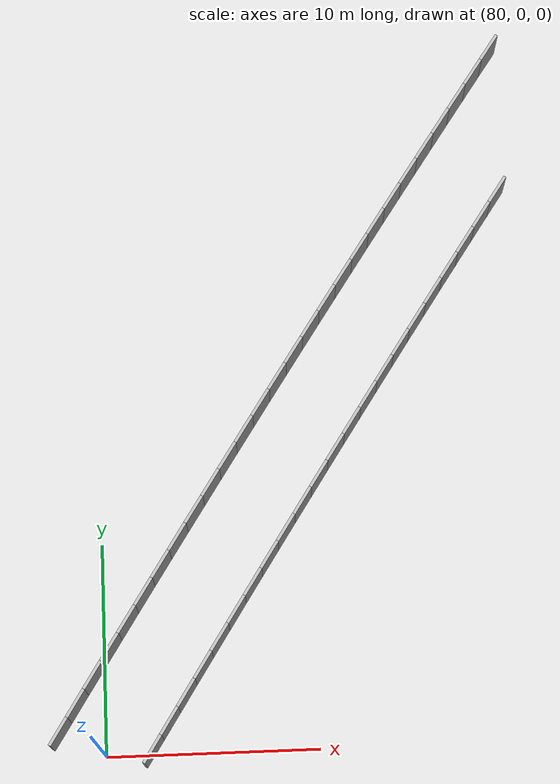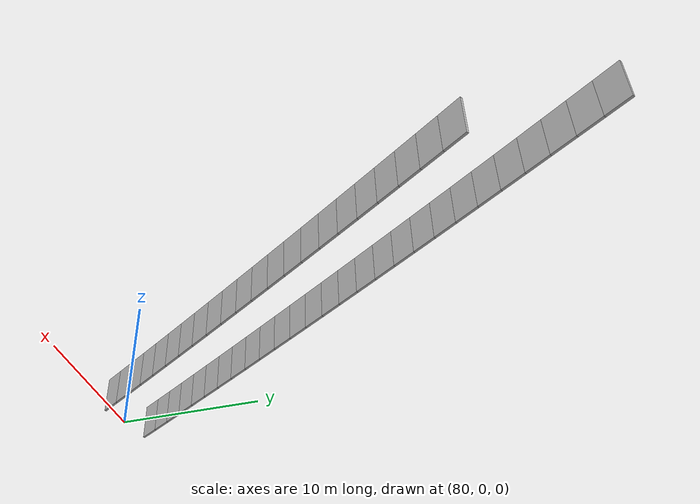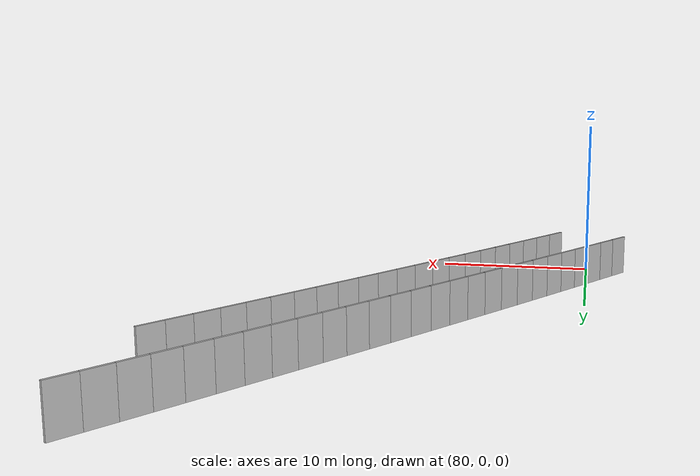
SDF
<?xml version="1.0" ?>
<sdf version="1.6">
  <model name="sps_0218">
    <pose frame="">0 0 0 0 -0 0</pose>
    <static>1</static>
    <self_collide>0</self_collide>
    <allow_auto_disable>0</allow_auto_disable>
    <link name="Wall4869">
      <kinematic>0</kinematic>
      <gravity>1</gravity>
      <self_collide>0</self_collide>
      <collision name="collision">
        <geometry>
          <box>
            <size>1.49647 0.15 2.5</size>
          </box>
        </geometry>
        <pose frame="">0 0 0 0 -0 0</pose>
      </collision>
      <visual name="visual">
        <geometry>
          <box>
            <size>1.49647 0.15 2.5</size>
          </box>
        </geometry>
        <pose frame="">0 0 0 0 -0 0</pose>
        <cast_shadows>1</cast_shadows>
        <transparency>0.0</transparency>
      </visual>
      <pose frame="">99.5547 26.3019 1.25 0 0 -2.17114</pose>
    </link>
    <link name="Wall4870">
      <kinematic>0</kinematic>
      <gravity>1</gravity>
      <self_collide>0</self_collide>
      <collision name="collision">
        <geometry>
          <box>
            <size>1.49665 0.15 2.5</size>
          </box>
        </geometry>
        <pose frame="">0 0 0 0 -0 0</pose>
      </collision>
      <visual name="visual">
        <geometry>
          <box>
            <size>1.49665 0.15 2.5</size>
          </box>
        </geometry>
        <pose frame="">0 0 0 0 -0 0</pose>
        <cast_shadows>1</cast_shadows>
        <transparency>0.0</transparency>
      </visual>
      <pose frame="">98.7103 25.0663 1.25 0 0 -2.16943</pose>
    </link>
    <link name="Wall4871">
      <kinematic>0</kinematic>
      <gravity>1</gravity>
      <self_collide>0</self_collide>
      <collision name="collision">
        <geometry>
          <box>
            <size>1.49636 0.15 2.5</size>
          </box>
        </geometry>
        <pose frame="">0 0 0 0 -0 0</pose>
      </collision>
      <visual name="visual">
        <geometry>
          <box>
            <size>1.49636 0.15 2.5</size>
          </box>
        </geometry>
        <pose frame="">0 0 0 0 -0 0</pose>
        <cast_shadows>1</cast_shadows>
        <transparency>0.0</transparency>
      </visual>
      <pose frame="">97.8679 23.8294 1.25 0 0 -2.16799</pose>
    </link>
    <link name="Wall4872">
      <kinematic>0</kinematic>
      <gravity>1</gravity>
      <self_collide>0</self_collide>
      <collision name="collision">
        <geometry>
          <box>
            <size>1.49655 0.15 2.5</size>
          </box>
        </geometry>
        <pose frame="">0 0 0 0 -0 0</pose>
      </collision>
      <visual name="visual">
        <geometry>
          <box>
            <size>1.49655 0.15 2.5</size>
          </box>
        </geometry>
        <pose frame="">0 0 0 0 -0 0</pose>
        <cast_shadows>1</cast_shadows>
        <transparency>0.0</transparency>
      </visual>
      <pose frame="">97.0275 22.5912 1.25 0 0 -2.16622</pose>
    </link>
    <link name="Wall4873">
      <kinematic>0</kinematic>
      <gravity>1</gravity>
      <self_collide>0</self_collide>
      <collision name="collision">
        <geometry>
          <box>
            <size>1.49652 0.15 2.5</size>
          </box>
        </geometry>
        <pose frame="">0 0 0 0 -0 0</pose>
      </collision>
      <visual name="visual">
        <geometry>
          <box>
            <size>1.49652 0.15 2.5</size>
          </box>
        </geometry>
        <pose frame="">0 0 0 0 -0 0</pose>
        <cast_shadows>1</cast_shadows>
        <transparency>0.0</transparency>
      </visual>
      <pose frame="">96.1891 21.3516 1.25 0 0 -2.16481</pose>
    </link>
    <link name="Wall4874">
      <kinematic>0</kinematic>
      <gravity>1</gravity>
      <self_collide>0</self_collide>
      <collision name="collision">
        <geometry>
          <box>
            <size>1.49639 0.15 2.5</size>
          </box>
        </geometry>
        <pose frame="">0 0 0 0 -0 0</pose>
      </collision>
      <visual name="visual">
        <geometry>
          <box>
            <size>1.49639 0.15 2.5</size>
          </box>
        </geometry>
        <pose frame="">0 0 0 0 -0 0</pose>
        <cast_shadows>1</cast_shadows>
        <transparency>0.0</transparency>
      </visual>
      <pose frame="">95.3526 20.1108 1.25 0 0 -2.16314</pose>
    </link>
    <link name="Wall4875">
      <kinematic>0</kinematic>
      <gravity>1</gravity>
      <self_collide>0</self_collide>
      <collision name="collision">
        <geometry>
          <box>
            <size>1.49674 0.15 2.5</size>
          </box>
        </geometry>
        <pose frame="">0 0 0 0 -0 0</pose>
      </collision>
      <visual name="visual">
        <geometry>
          <box>
            <size>1.49674 0.15 2.5</size>
          </box>
        </geometry>
        <pose frame="">0 0 0 0 -0 0</pose>
        <cast_shadows>1</cast_shadows>
        <transparency>0.0</transparency>
      </visual>
      <pose frame="">94.5179 18.8686 1.25 0 0 -2.16166</pose>
    </link>
    <link name="Wall4876">
      <kinematic>0</kinematic>
      <gravity>1</gravity>
      <self_collide>0</self_collide>
      <collision name="collision">
        <geometry>
          <box>
            <size>1.49653 0.15 2.5</size>
          </box>
        </geometry>
        <pose frame="">0 0 0 0 -0 0</pose>
      </collision>
      <visual name="visual">
        <geometry>
          <box>
            <size>1.49653 0.15 2.5</size>
          </box>
        </geometry>
        <pose frame="">0 0 0 0 -0 0</pose>
        <cast_shadows>1</cast_shadows>
        <transparency>0.0</transparency>
      </visual>
      <pose frame="">93.6852 17.625 1.25 0 0 -2.15999</pose>
    </link>
    <link name="Wall4877">
      <kinematic>0</kinematic>
      <gravity>1</gravity>
      <self_collide>0</self_collide>
      <collision name="collision">
        <geometry>
          <box>
            <size>1.49638 0.15 2.5</size>
          </box>
        </geometry>
        <pose frame="">0 0 0 0 -0 0</pose>
      </collision>
      <visual name="visual">
        <geometry>
          <box>
            <size>1.49638 0.15 2.5</size>
          </box>
        </geometry>
        <pose frame="">0 0 0 0 -0 0</pose>
        <cast_shadows>1</cast_shadows>
        <transparency>0.0</transparency>
      </visual>
      <pose frame="">92.8546 16.3802 1.25 0 0 -2.15844</pose>
    </link>
    <link name="Wall4878">
      <kinematic>0</kinematic>
      <gravity>1</gravity>
      <self_collide>0</self_collide>
      <collision name="collision">
        <geometry>
          <box>
            <size>1.49674 0.15 2.5</size>
          </box>
        </geometry>
        <pose frame="">0 0 0 0 -0 0</pose>
      </collision>
      <visual name="visual">
        <geometry>
          <box>
            <size>1.49674 0.15 2.5</size>
          </box>
        </geometry>
        <pose frame="">0 0 0 0 -0 0</pose>
        <cast_shadows>1</cast_shadows>
        <transparency>0.0</transparency>
      </visual>
      <pose frame="">92.026 15.134 1.25 0 0 -2.15681</pose>
    </link>
    <link name="Wall4879">
      <kinematic>0</kinematic>
      <gravity>1</gravity>
      <self_collide>0</self_collide>
      <collision name="collision">
        <geometry>
          <box>
            <size>1.49642 0.15 2.5</size>
          </box>
        </geometry>
        <pose frame="">0 0 0 0 -0 0</pose>
      </collision>
      <visual name="visual">
        <geometry>
          <box>
            <size>1.49642 0.15 2.5</size>
          </box>
        </geometry>
        <pose frame="">0 0 0 0 -0 0</pose>
        <cast_shadows>1</cast_shadows>
        <transparency>0.0</transparency>
      </visual>
      <pose frame="">91.1993 13.8865 1.25 0 0 -2.15524</pose>
    </link>
    <link name="Wall4880">
      <kinematic>0</kinematic>
      <gravity>1</gravity>
      <self_collide>0</self_collide>
      <collision name="collision">
        <geometry>
          <box>
            <size>1.49653 0.15 2.5</size>
          </box>
        </geometry>
        <pose frame="">0 0 0 0 -0 0</pose>
      </collision>
      <visual name="visual">
        <geometry>
          <box>
            <size>1.49653 0.15 2.5</size>
          </box>
        </geometry>
        <pose frame="">0 0 0 0 -0 0</pose>
        <cast_shadows>1</cast_shadows>
        <transparency>0.0</transparency>
      </visual>
      <pose frame="">90.3746 12.6378 1.25 0 0 -2.15372</pose>
    </link>
    <link name="Wall4881">
      <kinematic>0</kinematic>
      <gravity>1</gravity>
      <self_collide>0</self_collide>
      <collision name="collision">
        <geometry>
          <box>
            <size>1.49648 0.15 2.5</size>
          </box>
        </geometry>
        <pose frame="">0 0 0 0 -0 0</pose>
      </collision>
      <visual name="visual">
        <geometry>
          <box>
            <size>1.49648 0.15 2.5</size>
          </box>
        </geometry>
        <pose frame="">0 0 0 0 -0 0</pose>
        <cast_shadows>1</cast_shadows>
        <transparency>0.0</transparency>
      </visual>
      <pose frame="">89.5517 11.3878 1.25 0 0 -2.15218</pose>
    </link>
    <link name="Wall4882">
      <kinematic>0</kinematic>
      <gravity>1</gravity>
      <self_collide>0</self_collide>
      <collision name="collision">
        <geometry>
          <box>
            <size>1.49636 0.15 2.5</size>
          </box>
        </geometry>
        <pose frame="">0 0 0 0 -0 0</pose>
      </collision>
      <visual name="visual">
        <geometry>
          <box>
            <size>1.49636 0.15 2.5</size>
          </box>
        </geometry>
        <pose frame="">0 0 0 0 -0 0</pose>
        <cast_shadows>1</cast_shadows>
        <transparency>0.0</transparency>
      </visual>
      <pose frame="">88.731 10.1365 1.25 0 0 -2.15043</pose>
    </link>
    <link name="Wall4883">
      <kinematic>0</kinematic>
      <gravity>1</gravity>
      <self_collide>0</self_collide>
      <collision name="collision">
        <geometry>
          <box>
            <size>1.49662 0.15 2.5</size>
          </box>
        </geometry>
        <pose frame="">0 0 0 0 -0 0</pose>
      </collision>
      <visual name="visual">
        <geometry>
          <box>
            <size>1.49662 0.15 2.5</size>
          </box>
        </geometry>
        <pose frame="">0 0 0 0 -0 0</pose>
        <cast_shadows>1</cast_shadows>
        <transparency>0.0</transparency>
      </visual>
      <pose frame="">87.9123 8.8838 1.25 0 0 -2.1489</pose>
    </link>
    <link name="Wall4884">
      <kinematic>0</kinematic>
      <gravity>1</gravity>
      <self_collide>0</self_collide>
      <collision name="collision">
        <geometry>
          <box>
            <size>1.49649 0.15 2.5</size>
          </box>
        </geometry>
        <pose frame="">0 0 0 0 -0 0</pose>
      </collision>
      <visual name="visual">
        <geometry>
          <box>
            <size>1.49649 0.15 2.5</size>
          </box>
        </geometry>
        <pose frame="">0 0 0 0 -0 0</pose>
        <cast_shadows>1</cast_shadows>
        <transparency>0.0</transparency>
      </visual>
      <pose frame="">87.0955 7.62981 1.25 0 0 -2.14735</pose>
    </link>
    <link name="Wall4885">
      <kinematic>0</kinematic>
      <gravity>1</gravity>
      <self_collide>0</self_collide>
      <collision name="collision">
        <geometry>
          <box>
            <size>1.49662 0.15 2.5</size>
          </box>
        </geometry>
        <pose frame="">0 0 0 0 -0 0</pose>
      </collision>
      <visual name="visual">
        <geometry>
          <box>
            <size>1.49662 0.15 2.5</size>
          </box>
        </geometry>
        <pose frame="">0 0 0 0 -0 0</pose>
        <cast_shadows>1</cast_shadows>
        <transparency>0.0</transparency>
      </visual>
      <pose frame="">86.2808 6.3745 1.25 0 0 -2.14569</pose>
    </link>
    <link name="Wall4886">
      <kinematic>0</kinematic>
      <gravity>1</gravity>
      <self_collide>0</self_collide>
      <collision name="collision">
        <geometry>
          <box>
            <size>1.49654 0.15 2.5</size>
          </box>
        </geometry>
        <pose frame="">0 0 0 0 -0 0</pose>
      </collision>
      <visual name="visual">
        <geometry>
          <box>
            <size>1.49654 0.15 2.5</size>
          </box>
        </geometry>
        <pose frame="">0 0 0 0 -0 0</pose>
        <cast_shadows>1</cast_shadows>
        <transparency>0.0</transparency>
      </visual>
      <pose frame="">85.4679 5.11787 1.25 0 0 -2.14417</pose>
    </link>
    <link name="Wall4887">
      <kinematic>0</kinematic>
      <gravity>1</gravity>
      <self_collide>0</self_collide>
      <collision name="collision">
        <geometry>
          <box>
            <size>1.49639 0.15 2.5</size>
          </box>
        </geometry>
        <pose frame="">0 0 0 0 -0 0</pose>
      </collision>
      <visual name="visual">
        <geometry>
          <box>
            <size>1.49639 0.15 2.5</size>
          </box>
        </geometry>
        <pose frame="">0 0 0 0 -0 0</pose>
        <cast_shadows>1</cast_shadows>
        <transparency>0.0</transparency>
      </visual>
      <pose frame="">84.6572 3.86009 1.25 0 0 -2.14259</pose>
    </link>
    <link name="Wall4888">
      <kinematic>0</kinematic>
      <gravity>1</gravity>
      <self_collide>0</self_collide>
      <collision name="collision">
        <geometry>
          <box>
            <size>1.49656 0.15 2.5</size>
          </box>
        </geometry>
        <pose frame="">0 0 0 0 -0 0</pose>
      </collision>
      <visual name="visual">
        <geometry>
          <box>
            <size>1.49656 0.15 2.5</size>
          </box>
        </geometry>
        <pose frame="">0 0 0 0 -0 0</pose>
        <cast_shadows>1</cast_shadows>
        <transparency>0.0</transparency>
      </visual>
      <pose frame="">83.8484 2.601 1.25 0 0 -2.14096</pose>
    </link>
    <link name="Wall4889">
      <kinematic>0</kinematic>
      <gravity>1</gravity>
      <self_collide>0</self_collide>
      <collision name="collision">
        <geometry>
          <box>
            <size>1.49649 0.15 2.5</size>
          </box>
        </geometry>
        <pose frame="">0 0 0 0 -0 0</pose>
      </collision>
      <visual name="visual">
        <geometry>
          <box>
            <size>1.49649 0.15 2.5</size>
          </box>
        </geometry>
        <pose frame="">0 0 0 0 -0 0</pose>
        <cast_shadows>1</cast_shadows>
        <transparency>0.0</transparency>
      </visual>
      <pose frame="">83.0416 1.34059 1.25 0 0 -2.13944</pose>
    </link>
    <link name="Wall4890">
      <kinematic>0</kinematic>
      <gravity>1</gravity>
      <self_collide>0</self_collide>
      <collision name="collision">
        <geometry>
          <box>
            <size>1.49656 0.15 2.5</size>
          </box>
        </geometry>
        <pose frame="">0 0 0 0 -0 0</pose>
      </collision>
      <visual name="visual">
        <geometry>
          <box>
            <size>1.49656 0.15 2.5</size>
          </box>
        </geometry>
        <pose frame="">0 0 0 0 -0 0</pose>
        <cast_shadows>1</cast_shadows>
        <transparency>0.0</transparency>
      </visual>
      <pose frame="">82.2367 0.0789022 1.25 0 0 -2.13777</pose>
    </link>
    <link name="Wall6661">
      <kinematic>0</kinematic>
      <gravity>1</gravity>
      <self_collide>0</self_collide>
      <collision name="collision">
        <geometry>
          <box>
            <size>1.50326 0.15 2.5</size>
          </box>
        </geometry>
        <pose frame="">0 0 0 0 -0 0</pose>
      </collision>
      <visual name="visual">
        <geometry>
          <box>
            <size>1.50326 0.15 2.5</size>
          </box>
        </geometry>
        <pose frame="">0 0 0 0 -0 0</pose>
        <cast_shadows>1</cast_shadows>
        <transparency>0.0</transparency>
      </visual>
      <pose frame="">99.5517 33.591 1.25 0 0 -2.17741</pose>
    </link>
    <link name="Wall6662">
      <kinematic>0</kinematic>
      <gravity>1</gravity>
      <self_collide>0</self_collide>
      <collision name="collision">
        <geometry>
          <box>
            <size>1.50301 0.15 2.5</size>
          </box>
        </geometry>
        <pose frame="">0 0 0 0 -0 0</pose>
      </collision>
      <visual name="visual">
        <geometry>
          <box>
            <size>1.50301 0.15 2.5</size>
          </box>
        </geometry>
        <pose frame="">0 0 0 0 -0 0</pose>
        <cast_shadows>1</cast_shadows>
        <transparency>0.0</transparency>
      </visual>
      <pose frame="">98.6958 32.3554 1.25 0 0 -2.1759</pose>
    </link>
    <link name="Wall6663">
      <kinematic>0</kinematic>
      <gravity>1</gravity>
      <self_collide>0</self_collide>
      <collision name="collision">
        <geometry>
          <box>
            <size>1.50311 0.15 2.5</size>
          </box>
        </geometry>
        <pose frame="">0 0 0 0 -0 0</pose>
      </collision>
      <visual name="visual">
        <geometry>
          <box>
            <size>1.50311 0.15 2.5</size>
          </box>
        </geometry>
        <pose frame="">0 0 0 0 -0 0</pose>
        <cast_shadows>1</cast_shadows>
        <transparency>0.0</transparency>
      </visual>
      <pose frame="">97.8418 31.1185 1.25 0 0 -2.17427</pose>
    </link>
    <link name="Wall6664">
      <kinematic>0</kinematic>
      <gravity>1</gravity>
      <self_collide>0</self_collide>
      <collision name="collision">
        <geometry>
          <box>
            <size>1.50323 0.15 2.5</size>
          </box>
        </geometry>
        <pose frame="">0 0 0 0 -0 0</pose>
      </collision>
      <visual name="visual">
        <geometry>
          <box>
            <size>1.50323 0.15 2.5</size>
          </box>
        </geometry>
        <pose frame="">0 0 0 0 -0 0</pose>
        <cast_shadows>1</cast_shadows>
        <transparency>0.0</transparency>
      </visual>
      <pose frame="">96.9896 29.8802 1.25 0 0 -2.17274</pose>
    </link>
    <link name="Wall6665">
      <kinematic>0</kinematic>
      <gravity>1</gravity>
      <self_collide>0</self_collide>
      <collision name="collision">
        <geometry>
          <box>
            <size>1.50314 0.15 2.5</size>
          </box>
        </geometry>
        <pose frame="">0 0 0 0 -0 0</pose>
      </collision>
      <visual name="visual">
        <geometry>
          <box>
            <size>1.50314 0.15 2.5</size>
          </box>
        </geometry>
        <pose frame="">0 0 0 0 -0 0</pose>
        <cast_shadows>1</cast_shadows>
        <transparency>0.0</transparency>
      </visual>
      <pose frame="">96.1395 28.6405 1.25 0 0 -2.17101</pose>
    </link>
    <link name="Wall6666">
      <kinematic>0</kinematic>
      <gravity>1</gravity>
      <self_collide>0</self_collide>
      <collision name="collision">
        <geometry>
          <box>
            <size>1.50307 0.15 2.5</size>
          </box>
        </geometry>
        <pose frame="">0 0 0 0 -0 0</pose>
      </collision>
      <visual name="visual">
        <geometry>
          <box>
            <size>1.50307 0.15 2.5</size>
          </box>
        </geometry>
        <pose frame="">0 0 0 0 -0 0</pose>
        <cast_shadows>1</cast_shadows>
        <transparency>0.0</transparency>
      </visual>
      <pose frame="">95.2915 27.3995 1.25 0 0 -2.16957</pose>
    </link>
    <link name="Wall6667">
      <kinematic>0</kinematic>
      <gravity>1</gravity>
      <self_collide>0</self_collide>
      <collision name="collision">
        <geometry>
          <box>
            <size>1.50287 0.15 2.5</size>
          </box>
        </geometry>
        <pose frame="">0 0 0 0 -0 0</pose>
      </collision>
      <visual name="visual">
        <geometry>
          <box>
            <size>1.50287 0.15 2.5</size>
          </box>
        </geometry>
        <pose frame="">0 0 0 0 -0 0</pose>
        <cast_shadows>1</cast_shadows>
        <transparency>0.0</transparency>
      </visual>
      <pose frame="">94.4454 26.1573 1.25 0 0 -2.16793</pose>
    </link>
    <link name="Wall6668">
      <kinematic>0</kinematic>
      <gravity>1</gravity>
      <self_collide>0</self_collide>
      <collision name="collision">
        <geometry>
          <box>
            <size>1.50316 0.15 2.5</size>
          </box>
        </geometry>
        <pose frame="">0 0 0 0 -0 0</pose>
      </collision>
      <visual name="visual">
        <geometry>
          <box>
            <size>1.50316 0.15 2.5</size>
          </box>
        </geometry>
        <pose frame="">0 0 0 0 -0 0</pose>
        <cast_shadows>1</cast_shadows>
        <transparency>0.0</transparency>
      </visual>
      <pose frame="">93.6012 24.9137 1.25 0 0 -2.16633</pose>
    </link>
    <link name="Wall6669">
      <kinematic>0</kinematic>
      <gravity>1</gravity>
      <self_collide>0</self_collide>
      <collision name="collision">
        <geometry>
          <box>
            <size>1.50304 0.15 2.5</size>
          </box>
        </geometry>
        <pose frame="">0 0 0 0 -0 0</pose>
      </collision>
      <visual name="visual">
        <geometry>
          <box>
            <size>1.50304 0.15 2.5</size>
          </box>
        </geometry>
        <pose frame="">0 0 0 0 -0 0</pose>
        <cast_shadows>1</cast_shadows>
        <transparency>0.0</transparency>
      </visual>
      <pose frame="">92.7591 23.6687 1.25 0 0 -2.16477</pose>
    </link>
    <link name="Wall6670">
      <kinematic>0</kinematic>
      <gravity>1</gravity>
      <self_collide>0</self_collide>
      <collision name="collision">
        <geometry>
          <box>
            <size>1.50296 0.15 2.5</size>
          </box>
        </geometry>
        <pose frame="">0 0 0 0 -0 0</pose>
      </collision>
      <visual name="visual">
        <geometry>
          <box>
            <size>1.50296 0.15 2.5</size>
          </box>
        </geometry>
        <pose frame="">0 0 0 0 -0 0</pose>
        <cast_shadows>1</cast_shadows>
        <transparency>0.0</transparency>
      </visual>
      <pose frame="">91.9188 22.4225 1.25 0 0 -2.16324</pose>
    </link>
    <link name="Wall6671">
      <kinematic>0</kinematic>
      <gravity>1</gravity>
      <self_collide>0</self_collide>
      <collision name="collision">
        <geometry>
          <box>
            <size>1.50326 0.15 2.5</size>
          </box>
        </geometry>
        <pose frame="">0 0 0 0 -0 0</pose>
      </collision>
      <visual name="visual">
        <geometry>
          <box>
            <size>1.50326 0.15 2.5</size>
          </box>
        </geometry>
        <pose frame="">0 0 0 0 -0 0</pose>
        <cast_shadows>1</cast_shadows>
        <transparency>0.0</transparency>
      </visual>
      <pose frame="">91.0805 21.1749 1.25 0 0 -2.16164</pose>
    </link>
    <link name="Wall6672">
      <kinematic>0</kinematic>
      <gravity>1</gravity>
      <self_collide>0</self_collide>
      <collision name="collision">
        <geometry>
          <box>
            <size>1.50296 0.15 2.5</size>
          </box>
        </geometry>
        <pose frame="">0 0 0 0 -0 0</pose>
      </collision>
      <visual name="visual">
        <geometry>
          <box>
            <size>1.50296 0.15 2.5</size>
          </box>
        </geometry>
        <pose frame="">0 0 0 0 -0 0</pose>
        <cast_shadows>1</cast_shadows>
        <transparency>0.0</transparency>
      </visual>
      <pose frame="">90.2443 19.9259 1.25 0 0 -2.15996</pose>
    </link>
    <link name="Wall6673">
      <kinematic>0</kinematic>
      <gravity>1</gravity>
      <self_collide>0</self_collide>
      <collision name="collision">
        <geometry>
          <box>
            <size>1.50323 0.15 2.5</size>
          </box>
        </geometry>
        <pose frame="">0 0 0 0 -0 0</pose>
      </collision>
      <visual name="visual">
        <geometry>
          <box>
            <size>1.50323 0.15 2.5</size>
          </box>
        </geometry>
        <pose frame="">0 0 0 0 -0 0</pose>
        <cast_shadows>1</cast_shadows>
        <transparency>0.0</transparency>
      </visual>
      <pose frame="">89.41 18.6756 1.25 0 0 -2.15847</pose>
    </link>
    <link name="Wall6674">
      <kinematic>0</kinematic>
      <gravity>1</gravity>
      <self_collide>0</self_collide>
      <collision name="collision">
        <geometry>
          <box>
            <size>1.50308 0.15 2.5</size>
          </box>
        </geometry>
        <pose frame="">0 0 0 0 -0 0</pose>
      </collision>
      <visual name="visual">
        <geometry>
          <box>
            <size>1.50308 0.15 2.5</size>
          </box>
        </geometry>
        <pose frame="">0 0 0 0 -0 0</pose>
        <cast_shadows>1</cast_shadows>
        <transparency>0.0</transparency>
      </visual>
      <pose frame="">88.5775 17.424 1.25 0 0 -2.15693</pose>
    </link>
    <link name="Wall6675">
      <kinematic>0</kinematic>
      <gravity>1</gravity>
      <self_collide>0</self_collide>
      <collision name="collision">
        <geometry>
          <box>
            <size>1.50316 0.15 2.5</size>
          </box>
        </geometry>
        <pose frame="">0 0 0 0 -0 0</pose>
      </collision>
      <visual name="visual">
        <geometry>
          <box>
            <size>1.50316 0.15 2.5</size>
          </box>
        </geometry>
        <pose frame="">0 0 0 0 -0 0</pose>
        <cast_shadows>1</cast_shadows>
        <transparency>0.0</transparency>
      </visual>
      <pose frame="">87.7472 16.171 1.25 0 0 -2.15509</pose>
    </link>
    <link name="Wall6676">
      <kinematic>0</kinematic>
      <gravity>1</gravity>
      <self_collide>0</self_collide>
      <collision name="collision">
        <geometry>
          <box>
            <size>1.5032 0.15 2.5</size>
          </box>
        </geometry>
        <pose frame="">0 0 0 0 -0 0</pose>
      </collision>
      <visual name="visual">
        <geometry>
          <box>
            <size>1.5032 0.15 2.5</size>
          </box>
        </geometry>
        <pose frame="">0 0 0 0 -0 0</pose>
        <cast_shadows>1</cast_shadows>
        <transparency>0.0</transparency>
      </visual>
      <pose frame="">86.919 14.9166 1.25 0 0 -2.15366</pose>
    </link>
    <link name="Wall6677">
      <kinematic>0</kinematic>
      <gravity>1</gravity>
      <self_collide>0</self_collide>
      <collision name="collision">
        <geometry>
          <box>
            <size>1.50296 0.15 2.5</size>
          </box>
        </geometry>
        <pose frame="">0 0 0 0 -0 0</pose>
      </collision>
      <visual name="visual">
        <geometry>
          <box>
            <size>1.50296 0.15 2.5</size>
          </box>
        </geometry>
        <pose frame="">0 0 0 0 -0 0</pose>
        <cast_shadows>1</cast_shadows>
        <transparency>0.0</transparency>
      </visual>
      <pose frame="">86.0927 13.661 1.25 0 0 -2.15202</pose>
    </link>
    <link name="Wall6678">
      <kinematic>0</kinematic>
      <gravity>1</gravity>
      <self_collide>0</self_collide>
      <collision name="collision">
        <geometry>
          <box>
            <size>1.50296 0.15 2.5</size>
          </box>
        </geometry>
        <pose frame="">0 0 0 0 -0 0</pose>
      </collision>
      <visual name="visual">
        <geometry>
          <box>
            <size>1.50296 0.15 2.5</size>
          </box>
        </geometry>
        <pose frame="">0 0 0 0 -0 0</pose>
        <cast_shadows>1</cast_shadows>
        <transparency>0.0</transparency>
      </visual>
      <pose frame="">85.2685 12.4042 1.25 0 0 -2.15046</pose>
    </link>
    <link name="Wall6679">
      <kinematic>0</kinematic>
      <gravity>1</gravity>
      <self_collide>0</self_collide>
      <collision name="collision">
        <geometry>
          <box>
            <size>1.50319 0.15 2.5</size>
          </box>
        </geometry>
        <pose frame="">0 0 0 0 -0 0</pose>
      </collision>
      <visual name="visual">
        <geometry>
          <box>
            <size>1.50319 0.15 2.5</size>
          </box>
        </geometry>
        <pose frame="">0 0 0 0 -0 0</pose>
        <cast_shadows>1</cast_shadows>
        <transparency>0.0</transparency>
      </visual>
      <pose frame="">84.446 11.1461 1.25 0 0 -2.14906</pose>
    </link>
    <link name="Wall6680">
      <kinematic>0</kinematic>
      <gravity>1</gravity>
      <self_collide>0</self_collide>
      <collision name="collision">
        <geometry>
          <box>
            <size>1.50306 0.15 2.5</size>
          </box>
        </geometry>
        <pose frame="">0 0 0 0 -0 0</pose>
      </collision>
      <visual name="visual">
        <geometry>
          <box>
            <size>1.50306 0.15 2.5</size>
          </box>
        </geometry>
        <pose frame="">0 0 0 0 -0 0</pose>
        <cast_shadows>1</cast_shadows>
        <transparency>0.0</transparency>
      </visual>
      <pose frame="">83.6256 9.88658 1.25 0 0 -2.14722</pose>
    </link>
    <link name="Wall6681">
      <kinematic>0</kinematic>
      <gravity>1</gravity>
      <self_collide>0</self_collide>
      <collision name="collision">
        <geometry>
          <box>
            <size>1.50309 0.15 2.5</size>
          </box>
        </geometry>
        <pose frame="">0 0 0 0 -0 0</pose>
      </collision>
      <visual name="visual">
        <geometry>
          <box>
            <size>1.50309 0.15 2.5</size>
          </box>
        </geometry>
        <pose frame="">0 0 0 0 -0 0</pose>
        <cast_shadows>1</cast_shadows>
        <transparency>0.0</transparency>
      </visual>
      <pose frame="">82.8073 8.62578 1.25 0 0 -2.14576</pose>
    </link>
    <link name="Wall6682">
      <kinematic>0</kinematic>
      <gravity>1</gravity>
      <self_collide>0</self_collide>
      <collision name="collision">
        <geometry>
          <box>
            <size>1.50297 0.15 2.5</size>
          </box>
        </geometry>
        <pose frame="">0 0 0 0 -0 0</pose>
      </collision>
      <visual name="visual">
        <geometry>
          <box>
            <size>1.50297 0.15 2.5</size>
          </box>
        </geometry>
        <pose frame="">0 0 0 0 -0 0</pose>
        <cast_shadows>1</cast_shadows>
        <transparency>0.0</transparency>
      </visual>
      <pose frame="">81.991 7.36378 1.25 0 0 -2.14421</pose>
    </link>
    <link name="Wall6683">
      <kinematic>0</kinematic>
      <gravity>1</gravity>
      <self_collide>0</self_collide>
      <collision name="collision">
        <geometry>
          <box>
            <size>1.50309 0.15 2.5</size>
          </box>
        </geometry>
        <pose frame="">0 0 0 0 -0 0</pose>
      </collision>
      <visual name="visual">
        <geometry>
          <box>
            <size>1.50309 0.15 2.5</size>
          </box>
        </geometry>
        <pose frame="">0 0 0 0 -0 0</pose>
        <cast_shadows>1</cast_shadows>
        <transparency>0.0</transparency>
      </visual>
      <pose frame="">81.1766 6.10051 1.25 0 0 -2.14261</pose>
    </link>
    <link name="Wall6684">
      <kinematic>0</kinematic>
      <gravity>1</gravity>
      <self_collide>0</self_collide>
      <collision name="collision">
        <geometry>
          <box>
            <size>1.50323 0.15 2.5</size>
          </box>
        </geometry>
        <pose frame="">0 0 0 0 -0 0</pose>
      </collision>
      <visual name="visual">
        <geometry>
          <box>
            <size>1.50323 0.15 2.5</size>
          </box>
        </geometry>
        <pose frame="">0 0 0 0 -0 0</pose>
        <cast_shadows>1</cast_shadows>
        <transparency>0.0</transparency>
      </visual>
      <pose frame="">80.3642 4.8358 1.25 0 0 -2.14096</pose>
    </link>
    <link name="Wall6685">
      <kinematic>0</kinematic>
      <gravity>1</gravity>
      <self_collide>0</self_collide>
      <collision name="collision">
        <geometry>
          <box>
            <size>1.50292 0.15 2.5</size>
          </box>
        </geometry>
        <pose frame="">0 0 0 0 -0 0</pose>
      </collision>
      <visual name="visual">
        <geometry>
          <box>
            <size>1.50292 0.15 2.5</size>
          </box>
        </geometry>
        <pose frame="">0 0 0 0 -0 0</pose>
        <cast_shadows>1</cast_shadows>
        <transparency>0.0</transparency>
      </visual>
      <pose frame="">79.5538 3.5699 1.25 0 0 -2.1395</pose>
    </link>
    <link name="Wall6686">
      <kinematic>0</kinematic>
      <gravity>1</gravity>
      <self_collide>0</self_collide>
      <collision name="collision">
        <geometry>
          <box>
            <size>1.50313 0.15 2.5</size>
          </box>
        </geometry>
        <pose frame="">0 0 0 0 -0 0</pose>
      </collision>
      <visual name="visual">
        <geometry>
          <box>
            <size>1.50313 0.15 2.5</size>
          </box>
        </geometry>
        <pose frame="">0 0 0 0 -0 0</pose>
        <cast_shadows>1</cast_shadows>
        <transparency>0.0</transparency>
      </visual>
      <pose frame="">78.7455 2.30272 1.25 0 0 -2.13768</pose>
    </link>
    <link name="Wall6687">
      <kinematic>0</kinematic>
      <gravity>1</gravity>
      <self_collide>0</self_collide>
      <collision name="collision">
        <geometry>
          <box>
            <size>1.50296 0.15 2.5</size>
          </box>
        </geometry>
        <pose frame="">0 0 0 0 -0 0</pose>
      </collision>
      <visual name="visual">
        <geometry>
          <box>
            <size>1.50296 0.15 2.5</size>
          </box>
        </geometry>
        <pose frame="">0 0 0 0 -0 0</pose>
        <cast_shadows>1</cast_shadows>
        <transparency>0.0</transparency>
      </visual>
      <pose frame="">77.9393 1.03419 1.25 0 0 -2.13621</pose>
    </link>
  </model>
</sdf>
